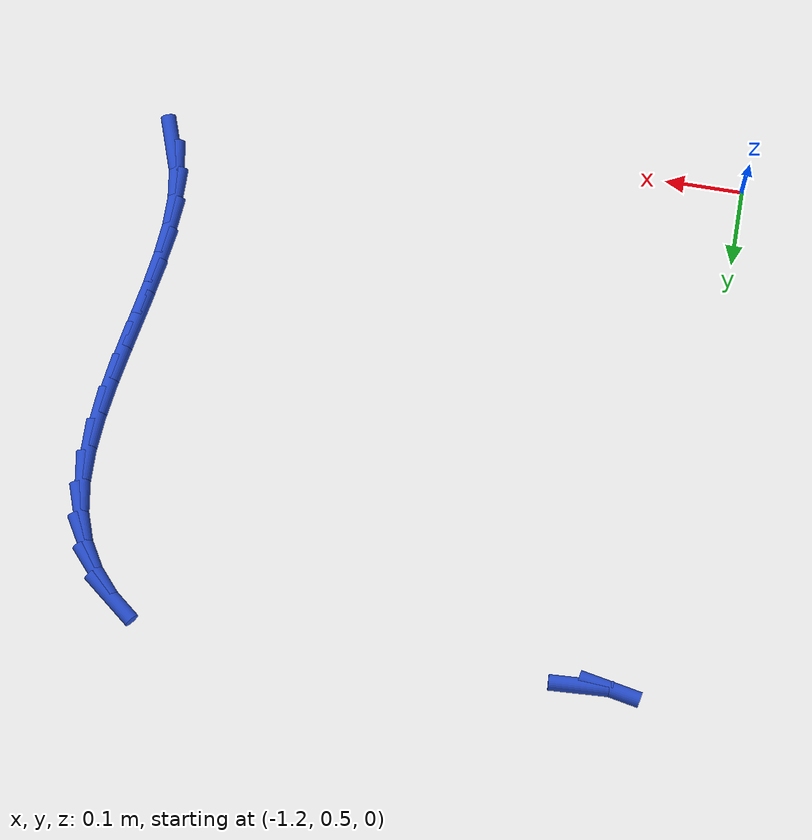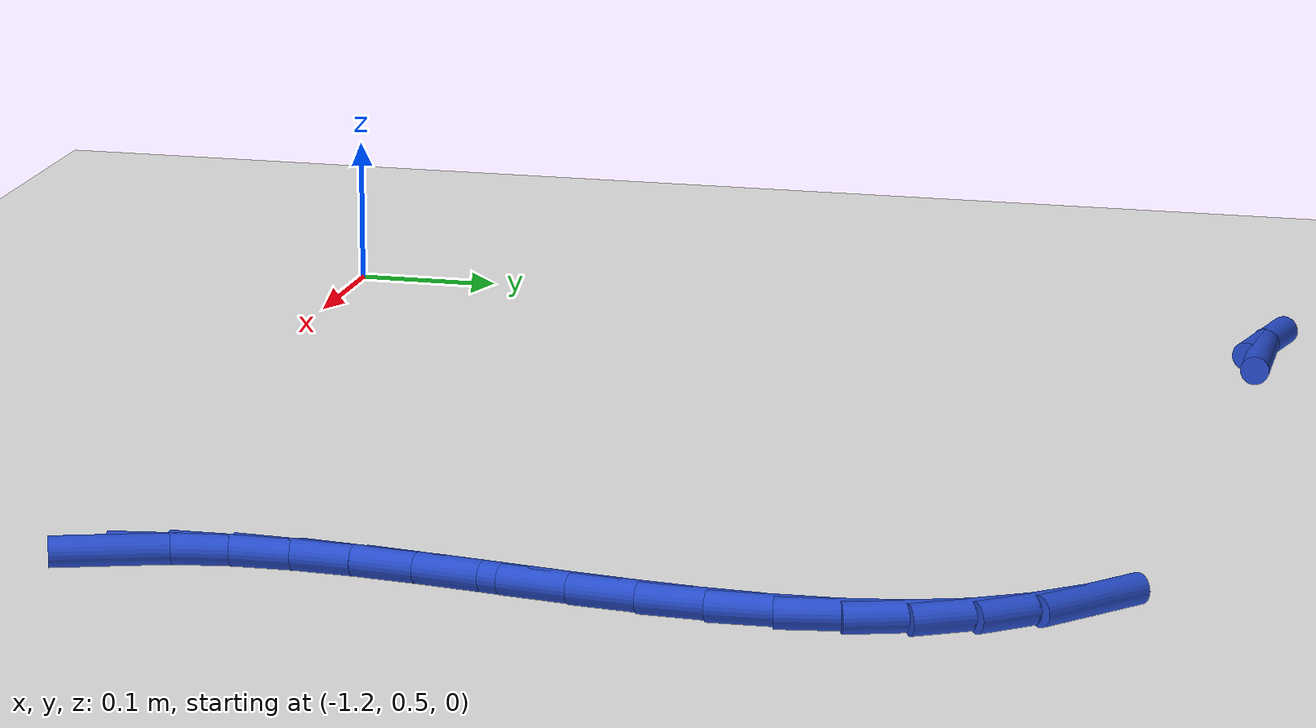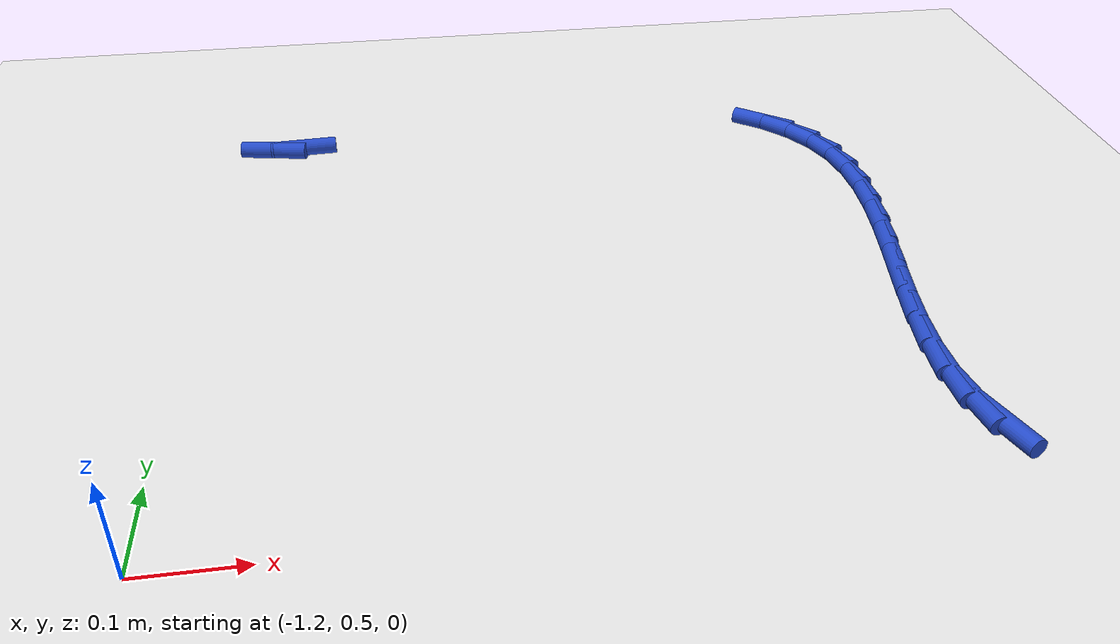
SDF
<sdf version="1.6">
 <world name="default">
  <model name="ground_plane">
   <static>1</static>
   <link name="link">
    <collision name="collision">
     <geometry><plane><normal>0 0 1</normal><size>100 100</size></plane></geometry>
     <surface><friction><ode><mu>100</mu><mu2>50</mu2></ode></friction></surface>
    </collision>
    <visual name="visual">
     <cast_shadows>0</cast_shadows>
     <geometry><plane><normal>0 0 1</normal><size>100 100</size></plane></geometry>
     <material>
      <script><uri>file://media/materials/scripts/gazebo.material</uri><name>Gazebo/WhiteGlow</name></script>
     </material>
    </visual>
   </link>
  </model>
  <model name="line">
   <link name="link_19">
    <pose>-0.45904732088133976 0.5623662939539198 0.01 0 1.57 -1.2364906010532806</pose>
    <collision name="collision">
     <geometry><cylinder><radius>0.01</radius><length>0.08</length></cylinder></geometry>
    </collision>
    <visual name="visual">
     <material>
      <script><name>Gazebo/Blue</name><uri>file://media/materials/scripts/gazebo.material</uri></script>
     </material>
     <geometry><cylinder><radius>0.01</radius><length>0.08</length></cylinder></geometry>
    </visual>
   </link>
   <link name="link_20">
    <pose>-0.47085673879814094 0.5963656019431754 0.01 0 1.57 -1.423534688620045</pose>
    <collision name="collision">
     <geometry><cylinder><radius>0.01</radius><length>0.08</length></cylinder></geometry>
    </collision>
    <visual name="visual">
     <material>
      <script><name>Gazebo/Blue</name><uri>file://media/materials/scripts/gazebo.material</uri></script>
     </material>
     <geometry><cylinder><radius>0.01</radius><length>0.08</length></cylinder></geometry>
    </visual>
   </link>
   <link name="link_21">
    <pose>-0.4764138859928321 0.633828978830674 0.01 0 1.57 -1.5595155047964435</pose>
    <collision name="collision">
     <geometry><cylinder><radius>0.01</radius><length>0.08</length></cylinder></geometry>
    </collision>
    <visual name="visual">
     <material>
      <script><name>Gazebo/Blue</name><uri>file://media/materials/scripts/gazebo.material</uri></script>
     </material>
     <geometry><cylinder><radius>0.01</radius><length>0.08</length></cylinder></geometry>
    </visual>
   </link>
   <link name="link_22">
    <pose>-0.476868985252644 0.6741700067152891 0.01 0 1.57 1.488958863091157</pose>
    <collision name="collision">
     <geometry><cylinder><radius>0.01</radius><length>0.08</length></cylinder></geometry>
    </collision>
    <visual name="visual">
     <material>
      <script><name>Gazebo/Blue</name><uri>file://media/materials/scripts/gazebo.material</uri></script>
     </material>
     <geometry><cylinder><radius>0.01</radius><length>0.08</length></cylinder></geometry>
    </visual>
   </link>
   <link name="link_23">
    <pose>-0.4733722593648075 0.7168022676958943 0.01 0 1.57 1.4296849099934554</pose>
    <collision name="collision">
     <geometry><cylinder><radius>0.01</radius><length>0.08</length></cylinder></geometry>
    </collision>
    <visual name="visual">
     <material>
      <script><name>Gazebo/Blue</name><uri>file://media/materials/scripts/gazebo.material</uri></script>
     </material>
     <geometry><cylinder><radius>0.01</radius><length>0.08</length></cylinder></geometry>
    </visual>
   </link>
   <link name="link_24">
    <pose>-0.4670739311165533 0.761139343871363 0.01 0 1.57 1.3976573922703521</pose>
    <collision name="collision">
     <geometry><cylinder><radius>0.01</radius><length>0.08</length></cylinder></geometry>
    </collision>
    <visual name="visual">
     <material>
      <script><name>Gazebo/Blue</name><uri>file://media/materials/scripts/gazebo.material</uri></script>
     </material>
     <geometry><cylinder><radius>0.01</radius><length>0.08</length></cylinder></geometry>
    </visual>
   </link>
   <link name="link_25">
    <pose>-0.45912422329511204 0.8065948173405679 0.01 0 1.57 1.389059368427677</pose>
    <collision name="collision">
     <geometry><cylinder><radius>0.01</radius><length>0.08</length></cylinder></geometry>
    </collision>
    <visual name="visual">
     <material>
      <script><name>Gazebo/Blue</name><uri>file://media/materials/scripts/gazebo.material</uri></script>
     </material>
     <geometry><cylinder><radius>0.01</radius><length>0.08</length></cylinder></geometry>
    </visual>
   </link>
   <link name="link_26">
    <pose>-0.45067335868771474 0.8525822702023832 0.01 0 1.57 1.402550349332435</pose>
    <collision name="collision">
     <geometry><cylinder><radius>0.01</radius><length>0.08</length></cylinder></geometry>
    </collision>
    <visual name="visual">
     <material>
      <script><name>Gazebo/Blue</name><uri>file://media/materials/scripts/gazebo.material</uri></script>
     </material>
     <geometry><cylinder><radius>0.01</radius><length>0.08</length></cylinder></geometry>
    </visual>
   </link>
   <link name="link_27">
    <pose>-0.44287156008159206 0.8985152845556821 0.01 0 1.57 1.439035477866174</pose>
    <collision name="collision">
     <geometry><cylinder><radius>0.01</radius><length>0.08</length></cylinder></geometry>
    </collision>
    <visual name="visual">
     <material>
      <script><name>Gazebo/Blue</name><uri>file://media/materials/scripts/gazebo.material</uri></script>
     </material>
     <geometry><cylinder><radius>0.01</radius><length>0.08</length></cylinder></geometry>
    </visual>
   </link>
   <link name="link_28">
    <pose>-0.43686905026397466 0.9438074424993376 0.01 0 1.57 1.5016227147052752</pose>
    <collision name="collision">
     <geometry><cylinder><radius>0.01</radius><length>0.08</length></cylinder></geometry>
    </collision>
    <visual name="visual">
     <material>
      <script><name>Gazebo/Blue</name><uri>file://media/materials/scripts/gazebo.material</uri></script>
     </material>
     <geometry><cylinder><radius>0.01</radius><length>0.08</length></cylinder></geometry>
    </visual>
   </link>
   <link name="link_29">
    <pose>-0.4338160520220934 0.9878723261322235 0.01 0 1.57 -1.5460272725389976</pose>
    <collision name="collision">
     <geometry><cylinder><radius>0.01</radius><length>0.08</length></cylinder></geometry>
    </collision>
    <visual name="visual">
     <material>
      <script><name>Gazebo/Blue</name><uri>file://media/materials/scripts/gazebo.material</uri></script>
     </material>
     <geometry><cylinder><radius>0.01</radius><length>0.08</length></cylinder></geometry>
    </visual>
   </link>
   <link name="link_30">
    <pose>-0.43486278814317914 1.0301235175532133 0.01 0 1.57 -1.4140863033260147</pose>
    <collision name="collision">
     <geometry><cylinder><radius>0.01</radius><length>0.08</length></cylinder></geometry>
    </collision>
    <visual name="visual">
     <material>
      <script><name>Gazebo/Blue</name><uri>file://media/materials/scripts/gazebo.material</uri></script>
     </material>
     <geometry><cylinder><radius>0.01</radius><length>0.08</length></cylinder></geometry>
    </visual>
   </link>
   <link name="link_31">
    <pose>-0.4411594814144624 1.0699745988611804 0.01 0 1.57 -1.2391766451692432</pose>
    <collision name="collision">
     <geometry><cylinder><radius>0.01</radius><length>0.08</length></cylinder></geometry>
    </collision>
    <visual name="visual">
     <material>
      <script><name>Gazebo/Blue</name><uri>file://media/materials/scripts/gazebo.material</uri></script>
     </material>
     <geometry><cylinder><radius>0.01</radius><length>0.08</length></cylinder></geometry>
    </visual>
   </link>
   <link name="link_32">
    <pose>-0.4538534423257002 1.1068396850951172 0.01 0 1.57 -1.0378144487902856</pose>
    <collision name="collision">
     <geometry><cylinder><radius>0.01</radius><length>0.08</length></cylinder></geometry>
    </collision>
    <visual name="visual">
     <material>
      <script><name>Gazebo/Blue</name><uri>file://media/materials/scripts/gazebo.material</uri></script>
     </material>
     <geometry><cylinder><radius>0.01</radius><length>0.08</length></cylinder></geometry>
    </visual>
   </link>
   <link name="link_33">
    <pose>-0.4735523460815084 1.140231642639307 0.01 0 1.57 -0.8480839209278062</pose>
    <collision name="collision">
     <geometry><cylinder><radius>0.01</radius><length>0.08</length></cylinder></geometry>
    </collision>
    <visual name="visual">
     <material>
      <script><name>Gazebo/Blue</name><uri>file://media/materials/scripts/gazebo.material</uri></script>
     </material>
     <geometry><cylinder><radius>0.01</radius><length>0.08</length></cylinder></geometry>
    </visual>
   </link>
   <link name="link_34">
    <pose>-0.49969599131086123 1.1698770551536672 0.01 0 1.57 -0.6776585721044397</pose>
    <collision name="collision">
     <geometry><cylinder><radius>0.01</radius><length>0.08</length></cylinder></geometry>
    </collision>
    <visual name="visual">
     <material>
      <script><name>Gazebo/Blue</name><uri>file://media/materials/scripts/gazebo.material</uri></script>
     </material>
     <geometry><cylinder><radius>0.01</radius><length>0.08</length></cylinder></geometry>
    </visual>
   </link>
   <link name="link_47">
    <pose>-1.0921212634969284 1.182503700980385 0.01 0 1.57 0.05805095928286429</pose>
    <collision name="collision">
     <geometry><cylinder><radius>0.01</radius><length>0.08</length></cylinder></geometry>
    </collision>
    <visual name="visual">
     <material>
      <script><name>Gazebo/Blue</name><uri>file://media/materials/scripts/gazebo.material</uri></script>
     </material>
     <geometry><cylinder><radius>0.01</radius><length>0.08</length></cylinder></geometry>
    </visual>
   </link>
   <link name="link_48">
    <pose>-1.1280606308337198 1.1804150395000956 0.01 0 1.57 -0.18952931685719568</pose>
    <collision name="collision">
     <geometry><cylinder><radius>0.01</radius><length>0.08</length></cylinder></geometry>
    </collision>
    <visual name="visual">
     <material>
      <script><name>Gazebo/Blue</name><uri>file://media/materials/scripts/gazebo.material</uri></script>
     </material>
     <geometry><cylinder><radius>0.01</radius><length>0.08</length></cylinder></geometry>
    </visual>
   </link>
  </model>
 </world>
</sdf>
